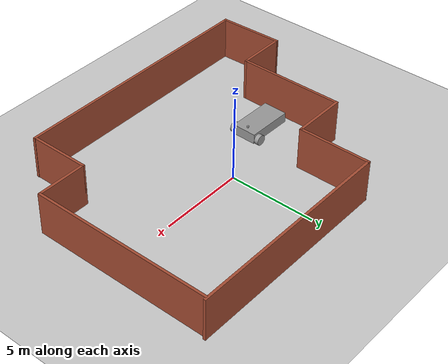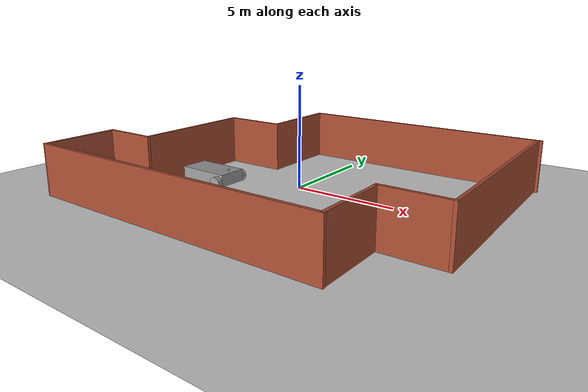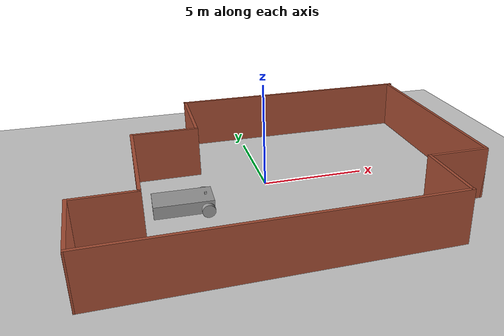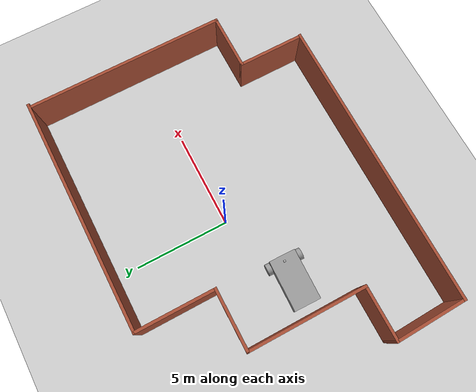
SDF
<sdf version="1.6">
 <world name="default">
  <plugin name="welcome_msg" filename="libhello.so"/>
  <light name="sun" type="directional">
   <pose>0 0 10 0 -0 0</pose>
   <diffuse>0.8 0.8 0.8 1</diffuse>
   <specular>0.2 0.2 0.2 1</specular>
   <attenuation>
    <range>1000</range>
    <constant>0.9</constant>
    <linear>0.01</linear>
    <quadratic>0.001</quadratic>
   </attenuation>
   <direction>-0.5 0.1 -0.9</direction>
  </light>
  <model name="ground_plane">
   <static>1</static>
   <link name="link">
    <collision name="collision">
     <geometry><plane><normal>0 0 1</normal><size>100 100</size></plane></geometry>
     <surface><friction><ode><mu>100</mu><mu2>50</mu2></ode></friction></surface>
    </collision>
    <visual name="visual">
     <cast_shadows>0</cast_shadows>
     <geometry><plane><normal>0 0 1</normal><size>100 100</size></plane></geometry>
     <material>
      <script><uri>file://media/materials/scripts/gazebo.material</uri><name>Gazebo/Grey</name></script>
     </material>
    </visual>
   </link>
  </model>
  <gravity>0 0 -9.8</gravity>
  <magnetic_field>6e-06 2.3e-05 -4.2e-05</magnetic_field>
  <atmosphere type="adiabatic"/>
  <physics name="default_physics" default="0" type="ode">
   <max_step_size>0.001</max_step_size>
   <real_time_factor>1</real_time_factor>
   <real_time_update_rate>1000</real_time_update_rate>
  </physics>
  <scene><ambient>0.4 0.4 0.4 1</ambient><background>0.7 0.7 0.7 1</background><shadows>1</shadows></scene>
  <audio><device>default</device></audio>
  <spherical_coordinates>
   <surface_model>EARTH_WGS84</surface_model>
   <latitude_deg>0</latitude_deg>
   <longitude_deg>0</longitude_deg>
   <elevation>0</elevation>
   <heading_deg>0</heading_deg>
  </spherical_coordinates>
  <model name="House">
   <pose>0.30947 -0.8117 0 0 -0 0</pose>
   <link name="Wall_30">
    <collision name="Wall_30_Collision">
     <geometry><box><size>3.25 0.15 2.5</size></box></geometry>
     <pose>0 0 1.25 0 -0 0</pose>
    </collision>
    <visual name="Wall_30_Visual">
     <pose>0 0 1.25 0 -0 0</pose>
     <geometry><box><size>3.25 0.15 2.5</size></box></geometry>
     <material>
      <script><uri>file://media/materials/scripts/gazebo.material</uri><name>Gazebo/Bricks</name></script>
      <ambient>1 1 1 1</ambient>
     </material>
     <meta><layer>0</layer></meta>
    </visual>
    <pose>-4.80961 2.83164 0 0 -0 3.14159</pose>
   </link>
   <link name="Wall_31">
    <collision name="Wall_31_Collision">
     <geometry><box><size>6.25 0.15 2.5</size></box></geometry>
     <pose>0 0 1.25 0 -0 0</pose>
    </collision>
    <visual name="Wall_31_Visual">
     <pose>0 0 1.25 0 -0 0</pose>
     <geometry><box><size>6.25 0.15 2.5</size></box></geometry>
     <material>
      <script><uri>file://media/materials/scripts/gazebo.material</uri><name>Gazebo/Bricks</name></script>
      <ambient>1 1 1 1</ambient>
     </material>
     <meta><layer>0</layer></meta>
    </visual>
    <pose>-6.35961 -0.218358 0 0 -0 -1.5708</pose>
   </link>
   <link name="Wall_36">
    <collision name="Wall_36_Collision">
     <geometry><box><size>2.87833 0.15 2.5</size></box></geometry>
     <pose>0 0 1.25 0 -0 0</pose>
    </collision>
    <visual name="Wall_36_Visual">
     <pose>0 0 1.25 0 -0 0</pose>
     <geometry><box><size>2.87833 0.15 2.5</size></box></geometry>
     <material>
      <script><uri>file://media/materials/scripts/gazebo.material</uri><name>Gazebo/Bricks</name></script>
      <ambient>1 1 1 1</ambient>
     </material>
     <meta><layer>0</layer></meta>
    </visual>
    <pose>-7.72377 -3.26836 0 0 -0 3.14159</pose>
   </link>
   <link name="Wall_40">
    <collision name="Wall_40_Collision">
     <geometry><box><size>3.81286 0.15 2.5</size></box></geometry>
     <pose>0 0 1.25 0 -0 0</pose>
    </collision>
    <visual name="Wall_40_Visual">
     <pose>0 0 1.25 0 -0 0</pose>
     <geometry><box><size>3.81286 0.15 2.5</size></box></geometry>
     <material>
      <script><uri>file://media/materials/scripts/gazebo.material</uri><name>Gazebo/Bricks</name></script>
      <ambient>1 1 1 1</ambient>
     </material>
     <meta><layer>0</layer></meta>
    </visual>
    <pose>-9.02711 -5.09877 0 0 -0 -1.53757</pose>
   </link>
   <link name="Wall_55">
    <collision name="Wall_55_Collision">
     <geometry><box><size>3.5 0.15 2.5</size></box></geometry>
     <pose>0 0 1.25 0 -0 0</pose>
    </collision>
    <visual name="Wall_55_Visual">
     <pose>0 0 1.25 0 -0 0</pose>
     <geometry><box><size>3.5 0.15 2.5</size></box></geometry>
     <material>
      <script><uri>file://media/materials/scripts/gazebo.material</uri><name>Gazebo/Bricks</name></script>
      <ambient>1 1 1 1</ambient>
     </material>
     <meta><layer>0</layer></meta>
    </visual>
    <pose>6.11206 -5.19336 0 0 -0 1.5708</pose>
   </link>
   <link name="Wall_56">
    <collision name="Wall_56_Collision">
     <geometry><box><size>3 0.15 2.5</size></box></geometry>
     <pose>0 0 1.25 0 -0 0</pose>
    </collision>
    <visual name="Wall_56_Visual">
     <pose>0 0 1.25 0 -0 0</pose>
     <geometry><box><size>3 0.15 2.5</size></box></geometry>
     <material>
      <script><uri>file://media/materials/scripts/gazebo.material</uri><name>Gazebo/Bricks</name></script>
      <ambient>1 1 1 1</ambient>
     </material>
     <meta><layer>0</layer></meta>
    </visual>
    <pose>7.53706 -3.51836 0 0 -0 0</pose>
   </link>
   <link name="Wall_58">
    <collision name="Wall_58_Collision">
     <geometry><box><size>4.25 0.15 2.5</size></box></geometry>
     <pose>0 0 1.25 0 -0 0</pose>
    </collision>
    <visual name="Wall_58_Visual">
     <pose>0 0 1.25 0 -0 0</pose>
     <geometry><box><size>4.25 0.15 2.5</size></box></geometry>
     <material>
      <script><uri>file://media/materials/scripts/gazebo.material</uri><name>Gazebo/Bricks</name></script>
      <ambient>1 1 1 1</ambient>
     </material>
     <meta><layer>0</layer></meta>
    </visual>
    <pose>-3.25961 4.88164 0 0 -0 1.5708</pose>
   </link>
   <link name="Wall_67">
    <collision name="Wall_67_Collision">
     <geometry><box><size>12.5 0.15 2.5</size></box></geometry>
     <pose>0 0 1.25 0 -0 0</pose>
    </collision>
    <visual name="Wall_67_Visual">
     <pose>0 0 1.25 0 -0 0</pose>
     <geometry><box><size>12.5 0.15 2.5</size></box></geometry>
     <material>
      <script><uri>file://media/materials/scripts/gazebo.material</uri><name>Gazebo/Bricks</name></script>
      <ambient>1 1 1 1</ambient>
     </material>
     <meta><layer>0</layer></meta>
    </visual>
    <pose>2.91539 6.93164 0 0 -0 0</pose>
   </link>
   <link name="Wall_70">
    <collision name="Wall_70_Collision">
     <geometry><box><size>10.5 0.15 2.5</size></box></geometry>
     <pose>0 0 1.25 0 -0 0</pose>
    </collision>
    <visual name="Wall_70_Visual">
     <pose>0 0 1.25 0 -0 0</pose>
     <geometry><box><size>10.5 0.15 2.5</size></box></geometry>
     <material>
      <script><uri>file://media/materials/scripts/gazebo.material</uri><name>Gazebo/Bricks</name></script>
      <ambient>1 1 1 1</ambient>
     </material>
     <meta><layer>0</layer></meta>
    </visual>
    <pose>8.96206 1.65664 0 0 -0 1.5708</pose>
   </link>
   <link name="Wall_72">
    <collision name="Wall_72_Collision">
     <geometry><box><size>15.25 0.15 2.5</size></box></geometry>
     <pose>0 0 1.25 0 -0 0</pose>
    </collision>
    <visual name="Wall_72_Visual">
     <pose>0 0 1.25 0 -0 0</pose>
     <geometry><box><size>15.25 0.15 2.5</size></box></geometry>
     <material>
      <script><uri>file://media/materials/scripts/gazebo.material</uri><name>Gazebo/Bricks</name></script>
      <ambient>1 1 1 1</ambient>
     </material>
     <meta><layer>0</layer></meta>
    </visual>
    <pose>-1.41627 -6.92919 0 0 -0 0</pose>
   </link>
   <static>1</static>
  </model>
  <model name="car">
   <link name="link_0">
    <inertial>
     <mass>2.24556</mass>
     <inertia><ixx>0.443072</ixx><ixy>0</ixy><ixz>0</ixz><iyy>1.41385</iyy><iyz>0</iyz><izz>1.72745</izz></inertia>
    </inertial>
    <pose>-0.394372 -0.006382 0.022121 0 -0 0</pose>
    <visual name="visual">
     <geometry><box><size>2.68505 1.42189 0.588173</size></box></geometry>
     <material>
      <lighting>1</lighting>
      <script><uri>file://media/materials/scripts/gazebo.material</uri><name>Gazebo/Grey</name></script>
      <shader type="vertex"><normal_map>__default__</normal_map></shader>
      <ambient>0.3 0.3 0.3 1</ambient>
      <diffuse>0.7 0.7 0.7 1</diffuse>
      <specular>0.01 0.01 0.01 1</specular>
      <emissive>0 0 0 1</emissive>
     </material>
    </visual>
    <collision name="collision">
     <geometry><box><size>2.68505 1.42189 0.588173</size></box></geometry>
     <surface>
      <friction>
       <ode><mu>1</mu><mu2>1</mu2><fdir1>0 0 0</fdir1><slip1>0</slip1><slip2>0</slip2></ode>
       <torsional>
        <coefficient>1</coefficient>
        <patch_radius>0</patch_radius>
        <surface_radius>0</surface_radius>
        <use_patch_radius>1</use_patch_radius>
        <ode><slip>0</slip></ode>
       </torsional>
      </friction>
      <bounce><restitution_coefficient>0</restitution_coefficient><threshold>1e+06</threshold></bounce>
      <contact>
       <collide_without_contact>0</collide_without_contact>
       <collide_without_contact_bitmask>1</collide_without_contact_bitmask>
       <collide_bitmask>1</collide_bitmask>
       <ode>
        <soft_cfm>0</soft_cfm>
        <soft_erp>0.2</soft_erp>
        <kp>1e+13</kp>
        <kd>1</kd>
        <max_vel>0.01</max_vel>
        <min_depth>0</min_depth>
       </ode>
       <bullet>
        <split_impulse>1</split_impulse>
        <split_impulse_penetration_threshold>-0.01</split_impulse_penetration_threshold>
        <soft_cfm>0</soft_cfm>
        <soft_erp>0.2</soft_erp>
        <kp>1e+13</kp>
        <kd>1</kd>
       </bullet>
      </contact>
     </surface>
    </collision>
   </link>
   <link name="link_1">
    <inertial>
     <mass>1</mass>
     <inertia><ixx>0.145833</ixx><ixy>0</ixy><ixz>0</ixz><iyy>0.145833</iyy><iyz>0</iyz><izz>0.125</izz></inertia>
    </inertial>
    <pose>0.648158 0.844591 -0.077879 1.5707 -0 0</pose>
    <visual name="visual">
     <geometry><cylinder><radius>0.3</radius><length>0.25</length></cylinder></geometry>
     <material>
      <lighting>1</lighting>
      <script><uri>file://media/materials/scripts/gazebo.material</uri><name>Gazebo/Grey</name></script>
      <shader type="vertex"><normal_map>__default__</normal_map></shader>
      <ambient>0.3 0.3 0.3 1</ambient>
      <diffuse>0.7 0.7 0.7 1</diffuse>
      <specular>0.01 0.01 0.01 1</specular>
      <emissive>0 0 0 1</emissive>
     </material>
    </visual>
    <collision name="collision">
     <geometry><cylinder><radius>0.3</radius><length>0.25</length></cylinder></geometry>
     <surface>
      <friction>
       <ode><mu>1</mu><mu2>1</mu2><fdir1>0 0 0</fdir1><slip1>0</slip1><slip2>0</slip2></ode>
       <torsional>
        <coefficient>1</coefficient>
        <patch_radius>0</patch_radius>
        <surface_radius>0</surface_radius>
        <use_patch_radius>1</use_patch_radius>
        <ode><slip>0</slip></ode>
       </torsional>
      </friction>
      <bounce><restitution_coefficient>0</restitution_coefficient><threshold>1e+06</threshold></bounce>
      <contact>
       <collide_without_contact>0</collide_without_contact>
       <collide_without_contact_bitmask>1</collide_without_contact_bitmask>
       <collide_bitmask>1</collide_bitmask>
       <ode>
        <soft_cfm>0</soft_cfm>
        <soft_erp>0.2</soft_erp>
        <kp>1e+13</kp>
        <kd>1</kd>
        <max_vel>0.01</max_vel>
        <min_depth>0</min_depth>
       </ode>
       <bullet>
        <split_impulse>1</split_impulse>
        <split_impulse_penetration_threshold>-0.01</split_impulse_penetration_threshold>
        <soft_cfm>0</soft_cfm>
        <soft_erp>0.2</soft_erp>
        <kp>1e+13</kp>
        <kd>1</kd>
       </bullet>
      </contact>
     </surface>
    </collision>
   </link>
   <link name="link_1_clone">
    <inertial>
     <mass>1</mass>
     <inertia><ixx>0.145833</ixx><ixy>0</ixy><ixz>0</ixz><iyy>0.145833</iyy><iyz>0</iyz><izz>0.125</izz></inertia>
    </inertial>
    <pose>0.648158 -0.842355 -0.077879 1.5707 -0 0</pose>
    <visual name="visual">
     <geometry><cylinder><radius>0.3</radius><length>0.25</length></cylinder></geometry>
     <material>
      <lighting>1</lighting>
      <script><uri>file://media/materials/scripts/gazebo.material</uri><name>Gazebo/Grey</name></script>
      <shader type="vertex"><normal_map>__default__</normal_map></shader>
      <ambient>0.3 0.3 0.3 1</ambient>
      <diffuse>0.7 0.7 0.7 1</diffuse>
      <specular>0.01 0.01 0.01 1</specular>
      <emissive>0 0 0 1</emissive>
     </material>
    </visual>
    <collision name="collision">
     <geometry><cylinder><radius>0.3</radius><length>0.25</length></cylinder></geometry>
     <surface>
      <friction>
       <ode><mu>1</mu><mu2>1</mu2><fdir1>0 0 0</fdir1><slip1>0</slip1><slip2>0</slip2></ode>
       <torsional>
        <coefficient>1</coefficient>
        <patch_radius>0</patch_radius>
        <surface_radius>0</surface_radius>
        <use_patch_radius>1</use_patch_radius>
        <ode><slip>0</slip></ode>
       </torsional>
      </friction>
      <bounce><restitution_coefficient>0</restitution_coefficient><threshold>1e+06</threshold></bounce>
      <contact>
       <collide_without_contact>0</collide_without_contact>
       <collide_without_contact_bitmask>1</collide_without_contact_bitmask>
       <collide_bitmask>1</collide_bitmask>
       <ode>
        <soft_cfm>0</soft_cfm>
        <soft_erp>0.2</soft_erp>
        <kp>1e+13</kp>
        <kd>1</kd>
        <max_vel>0.01</max_vel>
        <min_depth>0</min_depth>
       </ode>
       <bullet>
        <split_impulse>1</split_impulse>
        <split_impulse_penetration_threshold>-0.01</split_impulse_penetration_threshold>
        <soft_cfm>0</soft_cfm>
        <soft_erp>0.2</soft_erp>
        <kp>1e+13</kp>
        <kd>1</kd>
       </bullet>
      </contact>
     </surface>
    </collision>
   </link>
   <link name="link_3">
    <inertial>
     <mass>1</mass>
     <inertia><ixx>0.1</ixx><ixy>0</ixy><ixz>0</ixz><iyy>0.1</iyy><iyz>0</iyz><izz>0.1</izz></inertia>
    </inertial>
    <pose>-1.5369 -0.006382 -0.177879 0 -0 0</pose>
    <visual name="visual">
     <geometry><sphere><radius>0.2</radius></sphere></geometry>
     <material>
      <lighting>1</lighting>
      <script><uri>file://media/materials/scripts/gazebo.material</uri><name>Gazebo/Grey</name></script>
      <shader type="vertex"><normal_map>__default__</normal_map></shader>
      <ambient>0.3 0.3 0.3 1</ambient>
      <diffuse>0.7 0.7 0.7 1</diffuse>
      <specular>0.01 0.01 0.01 1</specular>
      <emissive>0 0 0 1</emissive>
     </material>
    </visual>
    <collision name="collision">
     <geometry><sphere><radius>0.2</radius></sphere></geometry>
     <surface>
      <friction>
       <ode><mu>1</mu><mu2>1</mu2><fdir1>0 0 0</fdir1><slip1>0</slip1><slip2>0</slip2></ode>
       <torsional>
        <coefficient>1</coefficient>
        <patch_radius>0</patch_radius>
        <surface_radius>0</surface_radius>
        <use_patch_radius>1</use_patch_radius>
        <ode><slip>0</slip></ode>
       </torsional>
      </friction>
      <bounce><restitution_coefficient>0</restitution_coefficient><threshold>1e+06</threshold></bounce>
      <contact>
       <collide_without_contact>0</collide_without_contact>
       <collide_without_contact_bitmask>1</collide_without_contact_bitmask>
       <collide_bitmask>1</collide_bitmask>
       <ode>
        <soft_cfm>0</soft_cfm>
        <soft_erp>0.2</soft_erp>
        <kp>1e+13</kp>
        <kd>1</kd>
        <max_vel>0.01</max_vel>
        <min_depth>0</min_depth>
       </ode>
       <bullet>
        <split_impulse>1</split_impulse>
        <split_impulse_penetration_threshold>-0.01</split_impulse_penetration_threshold>
        <soft_cfm>0</soft_cfm>
        <soft_erp>0.2</soft_erp>
        <kp>1e+13</kp>
        <kd>1</kd>
       </bullet>
      </contact>
     </surface>
    </collision>
   </link>
   <model name="depth_camera">
    <link name="link">
     <pose>0 0 0.05 0 -0 0</pose>
     <inertial>
      <mass>0.1</mass>
      <inertia>
       <ixx>0.000166667</ixx>
       <iyy>0.000166667</iyy>
       <izz>0.000166667</izz>
       <ixy>0</ixy>
       <ixz>0</ixz>
       <iyz>0</iyz>
      </inertia>
     </inertial>
     <collision name="collision"><geometry><box><size>0.1 0.1 0.1</size></box></geometry></collision>
     <visual name="visual"><geometry><box><size>0.1 0.1 0.1</size></box></geometry></visual>
     <sensor name="camera" type="depth">
      <camera name="__default__">
       <horizontal_fov>1.047</horizontal_fov>
       <image><width>320</width><height>240</height></image>
       <clip><near>0.1</near><far>100</far></clip>
      </camera>
      <always_on>1</always_on>
      <update_rate>30</update_rate>
      <visualize>1</visualize>
     </sensor>
    </link>
    <pose>0.634957 0.010527 0.311517 0 -0 0</pose>
   </model>
   <joint name="link_0_JOINT_0" type="revolute">
    <parent>link_0</parent>
    <child>link_1</child>
    <axis>
     <xyz>0 0 1</xyz>
     <use_parent_model_frame>0</use_parent_model_frame>
     <limit>
      <lower>-1.79769e+308</lower>
      <upper>1.79769e+308</upper>
      <effort>-1</effort>
      <velocity>-1</velocity>
     </limit>
     <dynamics>
      <spring_reference>0</spring_reference>
      <spring_stiffness>0</spring_stiffness>
      <damping>0</damping>
     </dynamics>
    </axis>
    <physics>
     <ode><limit><cfm>0</cfm><erp>0.2</erp></limit><suspension><cfm>0</cfm><erp>0.2</erp></suspension></ode>
    </physics>
   </joint>
   <joint name="link_0_JOINT_1" type="revolute">
    <parent>link_0</parent>
    <child>link_1_clone</child>
    <axis>
     <xyz>0 0 1</xyz>
     <use_parent_model_frame>0</use_parent_model_frame>
     <limit>
      <lower>-1.79769e+308</lower>
      <upper>1.79769e+308</upper>
      <effort>-1</effort>
      <velocity>-1</velocity>
     </limit>
     <dynamics>
      <spring_reference>0</spring_reference>
      <spring_stiffness>0</spring_stiffness>
      <damping>0</damping>
     </dynamics>
    </axis>
    <physics>
     <ode><limit><cfm>0</cfm><erp>0.2</erp></limit><suspension><cfm>0</cfm><erp>0.2</erp></suspension></ode>
    </physics>
   </joint>
   <joint name="link_0_JOINT_2" type="ball">
    <parent>link_0</parent>
    <child>link_3</child>
    <physics>
     <ode><limit><cfm>0</cfm><erp>0.2</erp></limit><suspension><cfm>0</cfm><erp>0.2</erp></suspension></ode>
    </physics>
   </joint>
   <joint name="link_0_JOINT_3" type="fixed">
    <parent>link_0</parent>
    <child>depth_camera::link</child>
    <physics>
     <ode><limit><cfm>0</cfm><erp>0.2</erp></limit><suspension><cfm>0</cfm><erp>0.2</erp></suspension></ode>
    </physics>
   </joint>
   <static>0</static>
   <plugin name="follower" filename="libFollowerPlugin.so"/>
   <pose>-3.81963 -1.60542 0.377885 3e-06 -4e-06 -0.020457</pose>
  </model>
 </world>
</sdf>
